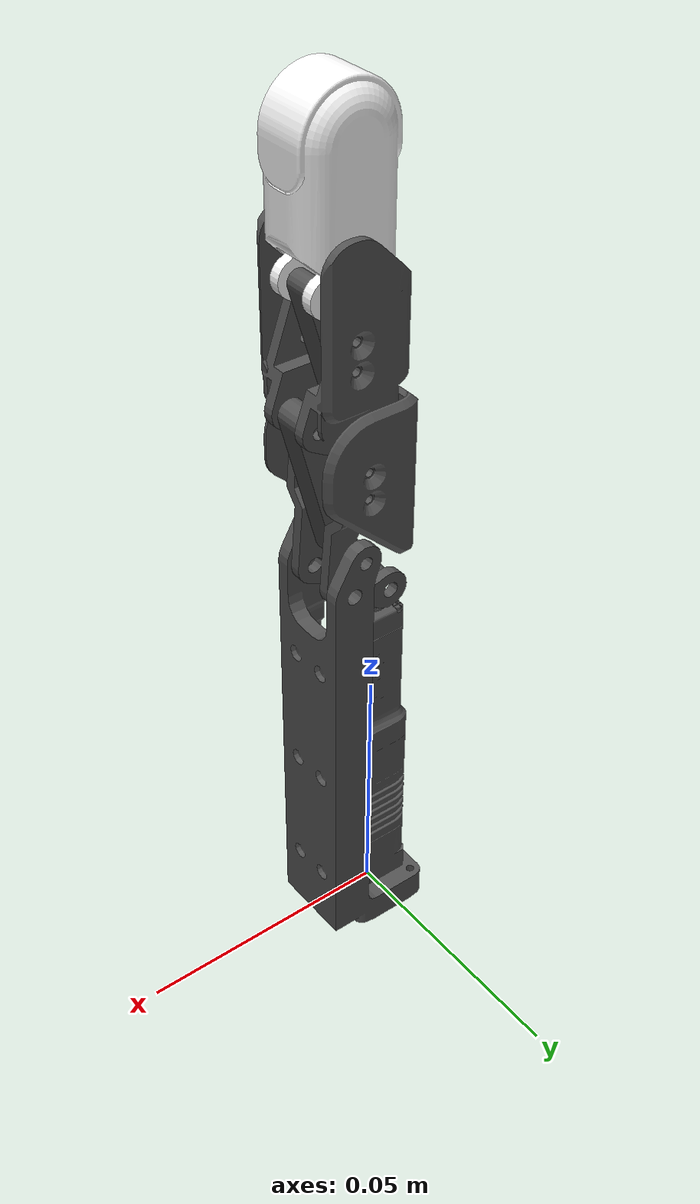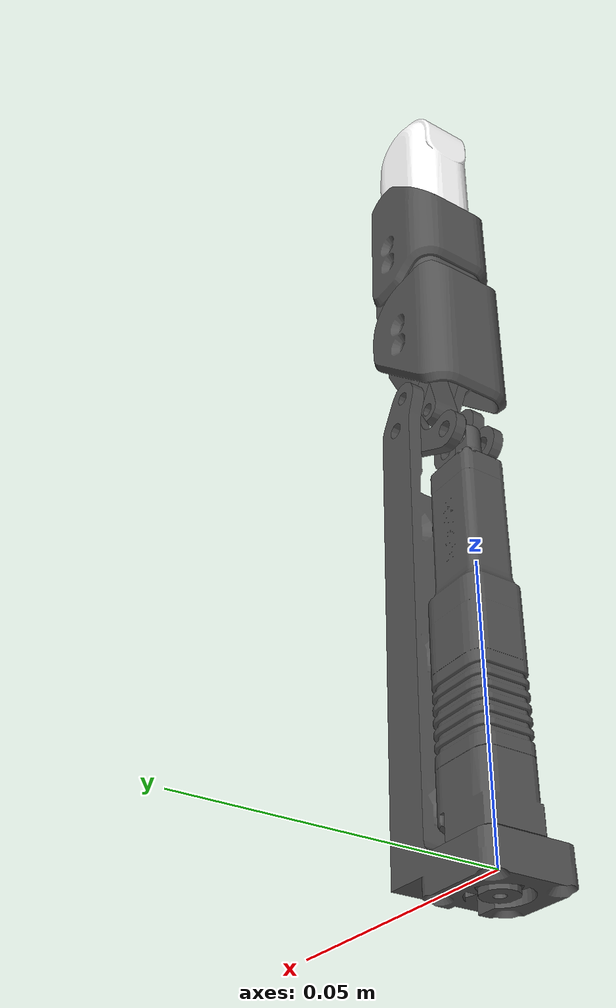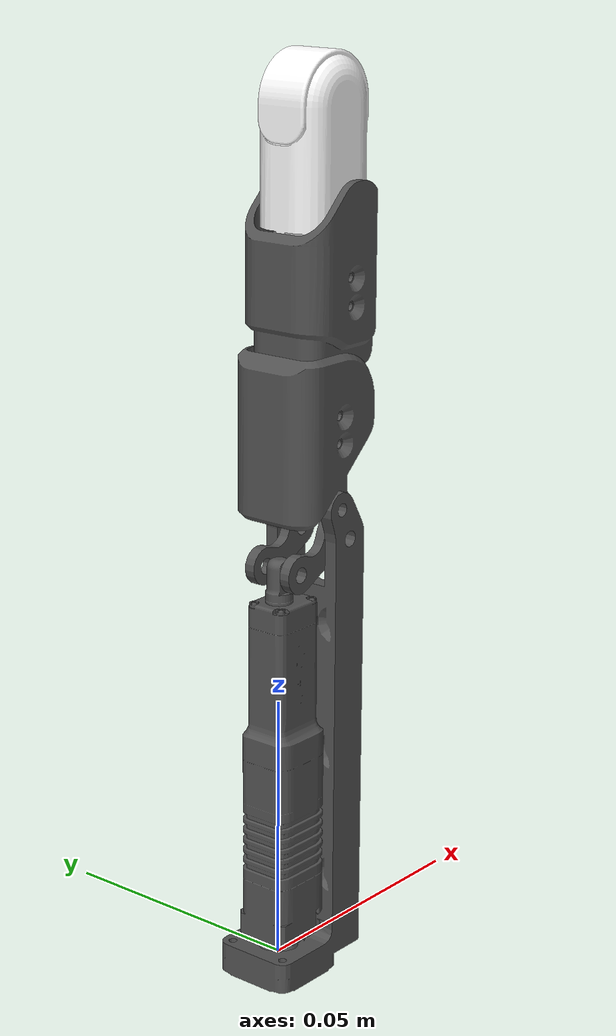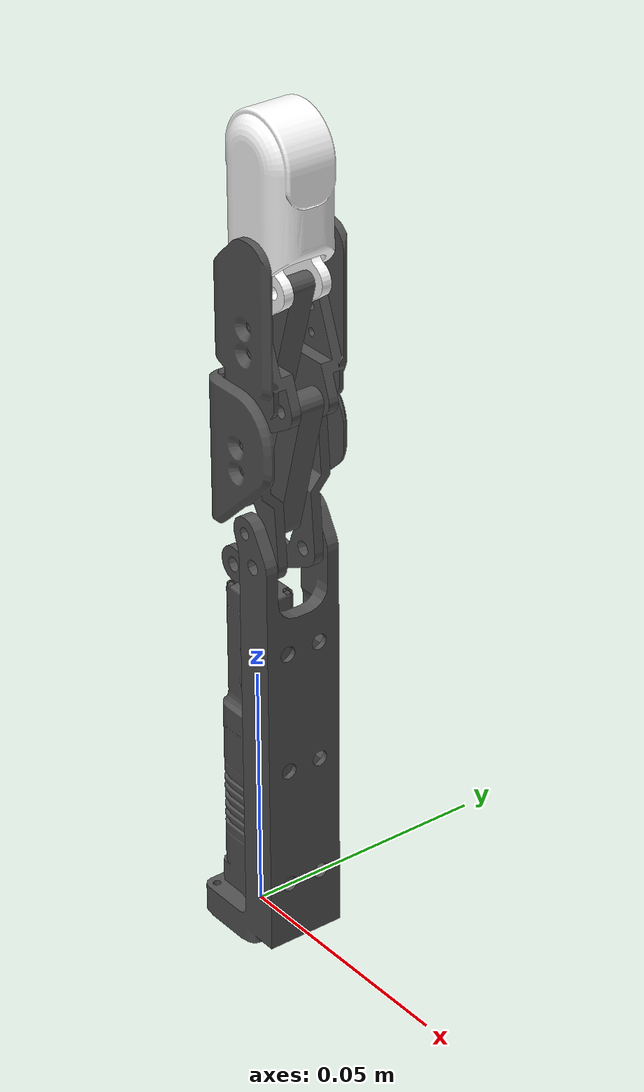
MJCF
<?xml version='1.0' encoding='utf-8'?>
<mujoco model="ROUGH_R_finger_module">
  <compiler angle="radian"/>
  <default>
    <geom contype="0" conaffinity="2" friction="0.8 0.01 0.002" material="robot_mat"/>
    <joint armature="0.0001" damping="0.01" />
  </default>
  <asset>
    <material name="robot_mat" rgba="0.32 0.32 0.32 1" specular="0.10" shininess="0.15"/>
    <mesh name="mesh_1" file="ROUGH_R_finger/meshes/Base_Link.STL" />
    <mesh name="mesh_2" file="ROUGH_R_finger/meshes/Link_1.STL" />
    <mesh name="mesh_3" file="ROUGH_R_finger/meshes/Link_4.STL" />
    <mesh name="mesh_4" file="ROUGH_R_finger/meshes/Link_2.STL" />
    <mesh name="mesh_5" file="ROUGH_R_finger/meshes/Link_3.STL" />
    <mesh name="mesh_6" file="ROUGH_R_finger/meshes/Link_5.STL" />
    <mesh name="mesh_7" file="ROUGH_R_finger/meshes/Motor_Link.STL" />
    <mesh name="mesh_8" file="ROUGH_R_finger/meshes/Motor_Linear_Link.STL" />
  </asset>
  <worldbody>
    <body name="Base_Link" pos="0 0 0" quat="1 0 0 0">
      <inertial mass="0.0164675" pos="0.009295 0 0.033358" fullinertia="1.03262e-05 1.00755e-05 7.81394e-07 5.45638e-13 -3.2678e-07 1.67724e-12" />
      <geom type="mesh" mesh="mesh_1" pos="0 0 0" quat="1 0 0 0" group="3" />
      <geom type="mesh" mesh="mesh_1" pos="0 0 0" quat="1 0 0 0" contype="2" conaffinity="2" group="1" rgba="0.32 0.32 0.32 1" />
      <body name="Link_1" pos="0.01005 0 0.0802" quat="1 0 0 0">
        <inertial mass="0.0049945" pos="-0.004551 -0 0.015175" fullinertia="6.47126e-07 6.53202e-07 1.90187e-07 -5.88256e-13 -4.22667e-08 -3.60614e-13" />
        <geom type="mesh" mesh="mesh_2" pos="0 0 0" quat="1 0 0 0" group="3" />
        <geom type="mesh" mesh="mesh_2" pos="0 0 0" quat="1 0 0 0" contype="2" conaffinity="2" group="1" rgba="0.32 0.32 0.32 1" />
        <joint name="Joint_2" type="hinge" pos="0 0 0" axis="0 1 0" range="0 1.45" limited="true" solimplimit="0.999 0.9999 0.00001 0.5 2"/>
        <body name="Link_3" pos="0.004689 0 0.03197" quat="1 0 0 0">
          <inertial mass="0.00449039" pos="-0.00602 0 0.009509" fullinertia="2.88049e-07 2.64542e-07 1.77221e-07 6.99152e-12 1.93499e-08 7.64481e-13" />
          <geom type="mesh" mesh="mesh_5" pos="0 0 0" quat="1 0 0 0" group="3" />
          <geom type="mesh" mesh="mesh_5" pos="0 0 0" quat="1 0 0 0" contype="2" conaffinity="2" group="1" rgba="0.32 0.32 0.32 1" />
          <joint name="Joint_4" type="hinge" pos="-0.006689 0 -0.004949" axis="0 1 0" range="0 1.2" limited="true" solimplimit="0.999 0.9999 0.00001 0.5 2"/>
          <site name="Joint_6_s2" pos="0 0 0" size="0.0008" />
          <site name="Joint_7_s1" pos="-0.006689 0 0.018378" size="0.0008" />
        </body>
        <body name="Link_4" pos="-0.004118 0 0.030046" quat="1 0 0 0">
          <inertial mass="0.0013744" pos="0.003517 -0 0.011872" fullinertia="7.4461e-08 7.9614e-08 1.0879e-08 1.3028e-25 -2.0645e-08 1.4931e-24" />
          <geom type="mesh" mesh="mesh_3" pos="0 0 0" quat="1 0 0 0" group="3" />
          <geom type="mesh" mesh="mesh_3" pos="0 0 0" quat="1 0 0 0" contype="2" conaffinity="2" group="1" rgba="0.32 0.32 0.32 1" />
          <joint name="Joint_5" type="hinge" pos="0 0 0" axis="0 1 0" range="0 1.3" limited="true" solimplimit="0.999 0.9999 0.00001 0.5 2"/>
          <body name="Link_5" pos="0.002118 0 0.020302" quat="1 0 0 0">
            <inertial mass="0.0058587" pos="0.000753 2e-06 0.014588" fullinertia="2.4099e-07 2.6235e-07 1.9419e-07 -4.0406e-11 -4.9959e-09 1.0186e-11" />
            <geom type="mesh" mesh="mesh_6" pos="0 0 0" quat="1 0 0 0" group="3" />
            <geom type="mesh" mesh="mesh_6" pos="0 0 0" quat="1 0 0 0" contype="2" conaffinity="2" friction="1.2 0.12 0.03" margin="0.0015" group="1" rgba="1 1 1 1" />
            <geom name="Link_5_tip_pad" type="capsule" fromto="0 0 0.006 0 0 0.028"
                  size="0.008" contype="2" conaffinity="2" condim="6" margin="0.0015"
                  friction="1.2 0.12 0.03" solref="0.0025 1.2" solimp="0.985 0.998 0.0005 0.5 2"
                  group="3" rgba="1 1 1 0"/>
            <joint name="Joint_8" type="hinge" pos="0.004915 0 0.003442" axis="0 1 0" range="0 0.7" limited="true" solimplimit="0.999 0.9999 0.00001 0.5 2"/>
            <site name="Joint_7_s2" pos="0 0 0" size="0.0008" />
          </body>
        </body>
        <site name="Joint_1_s2" pos="-0.01 0 -0.005" size="0.0008" />
      </body>
      <body name="Link_2" pos="0.007739 0 0.086046" quat="1 0 0 0">
        <inertial mass="0.00195815" pos="0.0035 0 0.013062" fullinertia="1.38237e-07 1.47657e-07 1.75782e-08 2.4608e-25 -3.48313e-08 -4.57698e-25" />
        <geom type="mesh" mesh="mesh_4" pos="0 0 0" quat="1 0 0 0" group="3" />
        <geom type="mesh" mesh="mesh_4" pos="0 0 0" quat="1 0 0 0" contype="2" conaffinity="2" group="1" rgba="0.32 0.32 0.32 1" />
        <joint name="Joint_3" type="hinge" pos="0 0 0" axis="0 -1 0" range="-1.62 0" limited="true" solimplimit="0.999 0.9999 0.00001 0.5 2"/>
        <site name="Joint_6_s1" pos="0.007 0 0.026124" size="0.0008" />
      </body>
      <body name="Motor_Link" pos="0 0 0" quat="1 0 0 0">
        <inertial mass="0.020263" pos="0.001197 -0 0.030975" fullinertia="7.004e-06 7.0957e-06 4.1848e-07 4.3282e-12 -4.331e-08 5.1988e-12" />
        <geom type="mesh" mesh="mesh_7" pos="0 0 0" quat="1 0 0 0" group="3" />
        <geom type="mesh" mesh="mesh_7" pos="0 0 0" quat="1 0 0 0" contype="2" conaffinity="2" group="1" rgba="0.32 0.32 0.32 1" />
        <joint name="Motor_Joint" type="hinge" pos="0 0 0" axis="0 -1 0" />
        <body name="Motor_Linear_Link" pos="5e-05 0 0.0752" quat="1 0 0 0">
          <inertial mass="0.0012895" pos="-0 0 -0.013604" fullinertia="3.7426e-08 3.7579e-08 3.9769e-09 -2.9203e-16 1.4188e-15 -5.5682e-15" />
          <geom type="mesh" mesh="mesh_8" pos="0 0 0" quat="1 0 0 0" group="3" />
          <geom type="mesh" mesh="mesh_8" pos="0 0 0" quat="1 0 0 0" contype="2" conaffinity="2" group="1" rgba="0.32 0.32 0.32 1" />
          <joint name="Motor_Linear_Joint" type="slide" pos="0 0 0" axis="0 0 1" range="0 0.014" limited="true" margin="0.00" solimplimit="0.999 0.9999 0.00001 0.5 2" />
          <site name="Joint_1_s1" pos="0 0 0" size="0.0008" />
        </body>
      </body>
    </body>
  </worldbody>
  <equality>
    <connect name="Joint_1_loop" site1="Joint_1_s1" site2="Joint_1_s2" solimp="0.999 0.9999 0.00001 0.5 2" />
    <connect name="Joint_6_loop" site1="Joint_6_s1" site2="Joint_6_s2" solimp="0.999 0.9999 0.00001 0.5 2" />
    <connect name="Joint_7_loop" site1="Joint_7_s1" site2="Joint_7_s2" solimp="0.999 0.9999 0.00001 0.5 2" />
  </equality>
  <contact>
    <exclude body1="Base_Link" body2="Link_1" />
    <exclude body1="Base_Link" body2="Link_2" />
    <exclude body1="Base_Link" body2="Link_3" />
    <exclude body1="Base_Link" body2="Link_4" />
    <exclude body1="Base_Link" body2="Link_5" />
    <exclude body1="Base_Link" body2="Motor_Link" />
    <exclude body1="Base_Link" body2="Motor_Linear_Link" />
    <exclude body1="Link_1" body2="Link_2" />
    <exclude body1="Link_1" body2="Link_3" />
    <exclude body1="Link_1" body2="Link_4" />
    <exclude body1="Link_1" body2="Link_5" />
    <exclude body1="Link_1" body2="Motor_Link" />
    <exclude body1="Link_1" body2="Motor_Linear_Link" />
    <exclude body1="Link_4" body2="Link_5" />
    <exclude body1="Link_2" body2="Link_3" />
    <exclude body1="Link_2" body2="Link_4" />
    <exclude body1="Link_2" body2="Link_5" />
    <exclude body1="Link_2" body2="Motor_Link" />
    <exclude body1="Link_2" body2="Motor_Linear_Link" />
    <exclude body1="Link_3" body2="Link_4" />
    <exclude body1="Link_3" body2="Link_5" />
    <exclude body1="Link_3" body2="Motor_Link" />
    <exclude body1="Link_3" body2="Motor_Linear_Link" />
    <exclude body1="Link_4" body2="Motor_Link" />
    <exclude body1="Link_4" body2="Motor_Linear_Link" />
    <exclude body1="Link_5" body2="Motor_Link" />
    <exclude body1="Link_5" body2="Motor_Linear_Link" />
    <exclude body1="Motor_Link" body2="Motor_Linear_Link" />
  </contact>
</mujoco>
